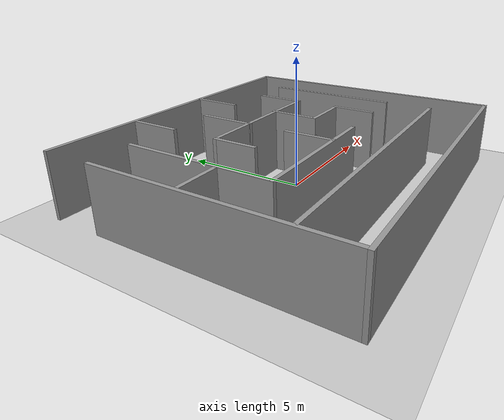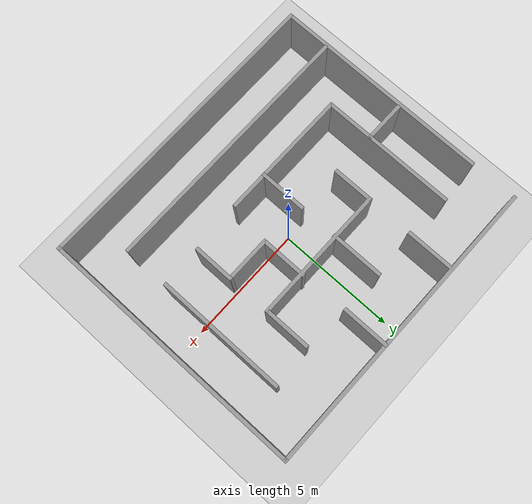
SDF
<sdf version='1.10'>
  <world name='maze'>
    <scene>
      <ambient>1 1 1 1</ambient>
      <background>0.800000012 0.800000012 0.800000012 1</background>
      <shadows>false</shadows>
    </scene>

    <gravity>0 0 -9.8000000000000007</gravity>
    <magnetic_field>5.5644999999999998e-06 2.2875799999999999e-05 -4.2388400000000002e-05</magnetic_field>
    <atmosphere type='adiabatic'/>
    <physics name='1ms' type='ignored'>
      <max_step_size>0.002</max_step_size>
      <real_time_factor>1</real_time_factor>
      <real_time_update_rate>500</real_time_update_rate>
    </physics>
    <plugin name='gz::sim::systems::Physics' filename='gz-sim-physics-system'/>
    <plugin name='gz::sim::systems::Sensors' filename='gz-sim-sensors-system'>
      <render_engine>ogre2</render_engine>
    </plugin>
    <plugin name='gz::sim::systems::SceneBroadcaster' filename='gz-sim-scene-broadcaster-system'/>
    <plugin name='gz::sim::systems::UserCommands' filename='gz-sim-user-commands-system'/>
    <model name='ground_plane'>
      <static>true</static>
      <link name='link'>
        <collision name='collision'>
          <geometry>
            <plane>
              <normal>0 0 1</normal>
              <size>100 100</size>
            </plane>
          </geometry>
          <surface>
            <friction>
              <ode>
                  <mu>1.0</mu>
                  <mu2>2.0</mu2>
              </ode>
            </friction>
            <bounce/>
            <contact/>
          </surface>
        </collision>
        <visual name='visual'>
          <geometry>
            <plane>
              <normal>0 0 1</normal>
              <size>100 100</size>
            </plane>
          </geometry>
          <material>
            <ambient>0.800000012 0.800000012 0.800000012 1</ambient>
            <diffuse>0.800000012 0.800000012 0.800000012 1</diffuse>
            <specular>0.800000012 0.800000012 0.800000012 1</specular>
          </material>
        </visual>
        <pose>0 0 0 0 0 0</pose>
        <inertial>
          <pose>0 0 0 0 0 0</pose>
          <mass>1</mass>
          <inertia>
            <ixx>1</ixx>
            <ixy>0</ixy>
            <ixz>0</ixz>
            <iyy>1</iyy>
            <iyz>0</iyz>
            <izz>1</izz>
          </inertia>
        </inertial>
        <enable_wind>false</enable_wind>
      </link>
      <pose>0 0 0 0 0 0</pose>
      <self_collide>false</self_collide>
    </model>

    <include>
        <uri>model://maze</uri>
        <pose>0 0 0 0 0 0</pose>
    </include>

    <light name='sun' type='directional'>
      <pose>0 0 0 0 0 0</pose>
      <cast_shadows>false</cast_shadows>
      <intensity>1</intensity>
      <direction>-0.5 0.10000000000000001 -0.90000000000000002</direction>
      <diffuse>0.800000012 0.800000012 0.800000012 1</diffuse>
      <specular>0.200000003 0.200000003 0.200000003 1</specular>
      <attenuation>
        <range>1000</range>
        <linear>0.0099999997764825821</linear>
        <constant>0.89999997615814209</constant>
        <quadratic>0.0010000000474974513</quadratic>
      </attenuation>
      <spot>
        <inner_angle>0</inner_angle>
        <outer_angle>0</outer_angle>
        <falloff>0</falloff>
      </spot>
    </light>
  </world>
</sdf>

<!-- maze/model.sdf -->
<sdf version='1.7'>
  <model name='maze'>
    <pose>0.736927 -0.393909 0 0 -0 0</pose>
    <link name='Wall_1'>
      <collision name='Wall_1_Collision'>
        <geometry>
          <box>
            <size>12.75 0.15 2.5</size>
          </box>
        </geometry>
        <pose>0 0 1.25 0 -0 0</pose>
      </collision>
      <visual name='Wall_1_Visual'>
        <pose>0 0 1.25 0 -0 0</pose>
        <geometry>
          <box>
            <size>12.75 0.15 2.5</size>
          </box>
        </geometry>
        <material>
          <script>
            <uri>file://media/materials/scripts/gazebo.material</uri>
            <name>Gazebo/Grey</name>
          </script>
          <ambient>1 1 1 1</ambient>
        </material>
        <meta>
          <layer>0</layer>
        </meta>
      </visual>
      <pose>0 5.55 0 0 -0 0</pose>
    </link>
    <link name='Wall_10'>
      <collision name='Wall_10_Collision'>
        <geometry>
          <box>
            <size>5.75 0.15 2.5</size>
          </box>
        </geometry>
        <pose>0 0 1.25 0 -0 0</pose>
      </collision>
      <visual name='Wall_10_Visual'>
        <pose>0 0 1.25 0 -0 0</pose>
        <geometry>
          <box>
            <size>5.75 0.15 2.5</size>
          </box>
        </geometry>
        <material>
          <script>
            <uri>file://media/materials/scripts/gazebo.material</uri>
            <name>Gazebo/Grey</name>
          </script>
          <ambient>1 1 1 1</ambient>
        </material>
        <meta>
          <layer>0</layer>
        </meta>
      </visual>
      <pose>-4.54439 0.887986 0 0 -0 -1.5708</pose>
    </link>
    <link name='Wall_11'>
      <collision name='Wall_11_Collision'>
        <geometry>
          <box>
            <size>5.5 0.15 2.5</size>
          </box>
        </geometry>
        <pose>0 0 1.25 0 -0 0</pose>
      </collision>
      <visual name='Wall_11_Visual'>
        <pose>0 0 1.25 0 -0 0</pose>
        <geometry>
          <box>
            <size>5.5 0.15 2.5</size>
          </box>
        </geometry>
        <material>
          <script>
            <uri>file://media/materials/scripts/gazebo.material</uri>
            <name>Gazebo/Grey</name>
          </script>
          <ambient>1 1 1 1</ambient>
        </material>
        <meta>
          <layer>0</layer>
        </meta>
      </visual>
      <pose>-1.86939 -1.91201 0 0 -0 0</pose>
    </link>
    <link name='Wall_13'>
      <collision name='Wall_13_Collision'>
        <geometry>
          <box>
            <size>2 0.15 2.5</size>
          </box>
        </geometry>
        <pose>0 0 1.25 0 -0 0</pose>
      </collision>
      <visual name='Wall_13_Visual'>
        <pose>0 0 1.25 0 -0 0</pose>
        <geometry>
          <box>
            <size>2 0.15 2.5</size>
          </box>
        </geometry>
        <material>
          <script>
            <uri>file://media/materials/scripts/gazebo.material</uri>
            <name>Gazebo/Grey</name>
          </script>
          <ambient>1 1 1 1</ambient>
        </material>
        <meta>
          <layer>0</layer>
        </meta>
      </visual>
      <pose>-0.767159 -0.973055 0 0 -0 1.5708</pose>
    </link>
    <link name='Wall_15'>
      <collision name='Wall_15_Collision'>
        <geometry>
          <box>
            <size>1.75 0.15 2.5</size>
          </box>
        </geometry>
        <pose>0 0 1.25 0 -0 0</pose>
      </collision>
      <visual name='Wall_15_Visual'>
        <pose>0 0 1.25 0 -0 0</pose>
        <geometry>
          <box>
            <size>1.75 0.15 2.5</size>
          </box>
        </geometry>
        <material>
          <script>
            <uri>file://media/materials/scripts/gazebo.material</uri>
            <name>Gazebo/Grey</name>
          </script>
          <ambient>1 1 1 1</ambient>
        </material>
        <meta>
          <layer>0</layer>
        </meta>
      </visual>
      <pose>-2.68237 0.817159 0 0 -0 1.5708</pose>
    </link>
    <link name='Wall_16'>
      <collision name='Wall_16_Collision'>
        <geometry>
          <box>
            <size>5.75 0.15 2.5</size>
          </box>
        </geometry>
        <pose>0 0 1.25 0 -0 0</pose>
      </collision>
      <visual name='Wall_16_Visual'>
        <pose>0 0 1.25 0 -0 0</pose>
        <geometry>
          <box>
            <size>5.75 0.15 2.5</size>
          </box>
        </geometry>
        <material>
          <script>
            <uri>file://media/materials/scripts/gazebo.material</uri>
            <name>Gazebo/Grey</name>
          </script>
          <ambient>1 1 1 1</ambient>
        </material>
        <meta>
          <layer>0</layer>
        </meta>
      </visual>
      <pose>0.117627 1.61716 0 0 -0 0</pose>
    </link>
    <link name='Wall_17'>
      <collision name='Wall_17_Collision'>
        <geometry>
          <box>
            <size>2 0.15 2.5</size>
          </box>
        </geometry>
        <pose>0 0 1.25 0 -0 0</pose>
      </collision>
      <visual name='Wall_17_Visual'>
        <pose>0 0 1.25 0 -0 0</pose>
        <geometry>
          <box>
            <size>2 0.15 2.5</size>
          </box>
        </geometry>
        <material>
          <script>
            <uri>file://media/materials/scripts/gazebo.material</uri>
            <name>Gazebo/Grey</name>
          </script>
          <ambient>1 1 1 1</ambient>
        </material>
        <meta>
          <layer>0</layer>
        </meta>
      </visual>
      <pose>2.91763 2.54216 0 0 -0 1.5708</pose>
    </link>
    <link name='Wall_19'>
      <collision name='Wall_19_Collision'>
        <geometry>
          <box>
            <size>2.25 0.15 2.5</size>
          </box>
        </geometry>
        <pose>0 0 1.25 0 -0 0</pose>
      </collision>
      <visual name='Wall_19_Visual'>
        <pose>0 0 1.25 0 -0 0</pose>
        <geometry>
          <box>
            <size>2.25 0.15 2.5</size>
          </box>
        </geometry>
        <material>
          <script>
            <uri>file://media/materials/scripts/gazebo.material</uri>
            <name>Gazebo/Grey</name>
          </script>
          <ambient>1 1 1 1</ambient>
        </material>
        <meta>
          <layer>0</layer>
        </meta>
      </visual>
      <pose>-0.767159 2.63657 0 0 -0 1.5708</pose>
    </link>
    <link name='Wall_2'>
      <collision name='Wall_2_Collision'>
        <geometry>
          <box>
            <size>11.25 0.15 2.5</size>
          </box>
        </geometry>
        <pose>0 0 1.25 0 -0 0</pose>
      </collision>
      <visual name='Wall_2_Visual'>
        <pose>0 0 1.25 0 -0 0</pose>
        <geometry>
          <box>
            <size>11.25 0.15 2.5</size>
          </box>
        </geometry>
        <material>
          <script>
            <uri>file://media/materials/scripts/gazebo.material</uri>
            <name>Gazebo/Grey</name>
          </script>
          <ambient>1 1 1 1</ambient>
        </material>
        <meta>
          <layer>0</layer>
        </meta>
      </visual>
      <pose>6.3 0 0 0 -0 -1.5708</pose>
    </link>
    <link name='Wall_21'>
      <collision name='Wall_21_Collision'>
        <geometry>
          <box>
            <size>2 0.15 2.5</size>
          </box>
        </geometry>
        <pose>0 0 1.25 0 -0 0</pose>
      </collision>
      <visual name='Wall_21_Visual'>
        <pose>0 0 1.25 0 -0 0</pose>
        <geometry>
          <box>
            <size>2 0.15 2.5</size>
          </box>
        </geometry>
        <material>
          <script>
            <uri>file://media/materials/scripts/gazebo.material</uri>
            <name>Gazebo/Grey</name>
          </script>
          <ambient>1 1 1 1</ambient>
        </material>
        <meta>
          <layer>0</layer>
        </meta>
      </visual>
      <pose>1.09485 0.741371 0 0 -0 -1.5708</pose>
    </link>
    <link name='Wall_22'>
      <collision name='Wall_22_Collision'>
        <geometry>
          <box>
            <size>2 0.15 2.5</size>
          </box>
        </geometry>
        <pose>0 0 1.25 0 -0 0</pose>
      </collision>
      <visual name='Wall_22_Visual'>
        <pose>0 0 1.25 0 -0 0</pose>
        <geometry>
          <box>
            <size>2 0.15 2.5</size>
          </box>
        </geometry>
        <material>
          <script>
            <uri>file://media/materials/scripts/gazebo.material</uri>
            <name>Gazebo/Grey</name>
          </script>
          <ambient>1 1 1 1</ambient>
        </material>
        <meta>
          <layer>0</layer>
        </meta>
      </visual>
      <pose>2.01986 -0.183629 0 0 -0 0</pose>
    </link>
    <link name='Wall_23'>
      <collision name='Wall_23_Collision'>
        <geometry>
          <box>
            <size>1.75 0.15 2.5</size>
          </box>
        </geometry>
        <pose>0 0 1.25 0 -0 0</pose>
      </collision>
      <visual name='Wall_23_Visual'>
        <pose>0 0 1.25 0 -0 0</pose>
        <geometry>
          <box>
            <size>1.75 0.15 2.5</size>
          </box>
        </geometry>
        <material>
          <script>
            <uri>file://media/materials/scripts/gazebo.material</uri>
            <name>Gazebo/Grey</name>
          </script>
          <ambient>1 1 1 1</ambient>
        </material>
        <meta>
          <layer>0</layer>
        </meta>
      </visual>
      <pose>2.94486 -0.983629 0 0 -0 -1.5708</pose>
    </link>
    <link name='Wall_25'>
      <collision name='Wall_25_Collision'>
        <geometry>
          <box>
            <size>11 0.15 2.5</size>
          </box>
        </geometry>
        <pose>0 0 1.25 0 -0 0</pose>
      </collision>
      <visual name='Wall_25_Visual'>
        <pose>0 0 1.25 0 -0 0</pose>
        <geometry>
          <box>
            <size>11 0.15 2.5</size>
          </box>
        </geometry>
        <material>
          <script>
            <uri>file://media/materials/scripts/gazebo.material</uri>
            <name>Gazebo/Grey</name>
          </script>
          <ambient>1 1 1 1</ambient>
        </material>
        <meta>
          <layer>0</layer>
        </meta>
      </visual>
      <pose>-0.768599 -3.65367 0 0 -0 0</pose>
    </link>
    <link name='Wall_27'>
      <collision name='Wall_27_Collision'>
        <geometry>
          <box>
            <size>1.75 0.15 2.5</size>
          </box>
        </geometry>
        <pose>0 0 1.25 0 -0 0</pose>
      </collision>
      <visual name='Wall_27_Visual'>
        <pose>0 0 1.25 0 -0 0</pose>
        <geometry>
          <box>
            <size>1.75 0.15 2.5</size>
          </box>
        </geometry>
        <material>
          <script>
            <uri>file://media/materials/scripts/gazebo.material</uri>
            <name>Gazebo/Grey</name>
          </script>
          <ambient>1 1 1 1</ambient>
        </material>
        <meta>
          <layer>0</layer>
        </meta>
      </visual>
      <pose>-5.367 0.043759 0 0 -0 0</pose>
    </link>
    <link name='Wall_29'>
      <collision name='Wall_29_Collision'>
        <geometry>
          <box>
            <size>5.5 0.15 2.5</size>
          </box>
        </geometry>
        <pose>0 0 1.25 0 -0 0</pose>
      </collision>
      <visual name='Wall_29_Visual'>
        <pose>0 0 1.25 0 -0 0</pose>
        <geometry>
          <box>
            <size>5.5 0.15 2.5</size>
          </box>
        </geometry>
        <material>
          <script>
            <uri>file://media/materials/scripts/gazebo.material</uri>
            <name>Gazebo/Grey</name>
          </script>
          <ambient>1 1 1 1</ambient>
        </material>
        <meta>
          <layer>0</layer>
        </meta>
      </visual>
      <pose>4.65928 0.936546 0 0 -0 1.5708</pose>
    </link>
    <link name='Wall_3'>
      <collision name='Wall_3_Collision'>
        <geometry>
          <box>
            <size>12.75 0.15 2.5</size>
          </box>
        </geometry>
        <pose>0 0 1.25 0 -0 0</pose>
      </collision>
      <visual name='Wall_3_Visual'>
        <pose>0 0 1.25 0 -0 0</pose>
        <geometry>
          <box>
            <size>12.75 0.15 2.5</size>
          </box>
        </geometry>
        <material>
          <script>
            <uri>file://media/materials/scripts/gazebo.material</uri>
            <name>Gazebo/Grey</name>
          </script>
          <ambient>1 1 1 1</ambient>
        </material>
        <meta>
          <layer>0</layer>
        </meta>
      </visual>
      <pose>0 -5.55 0 0 -0 3.14159</pose>
    </link>
    <link name='Wall_4'>
      <collision name='Wall_4_Collision'>
        <geometry>
          <box>
            <size>9.25 0.15 2.5</size>
          </box>
        </geometry>
        <pose>0 0 1.25 0 -0 0</pose>
      </collision>
      <visual name='Wall_4_Visual'>
        <pose>0 0 1.25 0 -0 0</pose>
        <geometry>
          <box>
            <size>9.25 0.15 2.5</size>
          </box>
        </geometry>
        <material>
          <script>
            <uri>file://media/materials/scripts/gazebo.material</uri>
            <name>Gazebo/Grey</name>
          </script>
          <ambient>1 1 1 1</ambient>
        </material>
        <meta>
          <layer>0</layer>
        </meta>
      </visual>
      <pose>-6.3 -1 0 0 -0 1.5708</pose>
    </link>
    <link name='Wall_6'>
      <collision name='Wall_6_Collision'>
        <geometry>
          <box>
            <size>2 0.15 2.5</size>
          </box>
        </geometry>
        <pose>0 0 1.25 0 -0 0</pose>
      </collision>
      <visual name='Wall_6_Visual'>
        <pose>0 0 1.25 0 -0 0</pose>
        <geometry>
          <box>
            <size>2 0.15 2.5</size>
          </box>
        </geometry>
        <material>
          <script>
            <uri>file://media/materials/scripts/gazebo.material</uri>
            <name>Gazebo/Grey</name>
          </script>
          <ambient>1 1 1 1</ambient>
        </material>
        <meta>
          <layer>0</layer>
        </meta>
      </visual>
      <pose>-2.68237 4.492 0 0 -0 -1.5708</pose>
    </link>
    <link name='Wall_8'>
      <collision name='Wall_8_Collision'>
        <geometry>
          <box>
            <size>2 0.15 2.5</size>
          </box>
        </geometry>
        <pose>0 0 1.25 0 -0 0</pose>
      </collision>
      <visual name='Wall_8_Visual'>
        <pose>0 0 1.25 0 -0 0</pose>
        <geometry>
          <box>
            <size>2 0.15 2.5</size>
          </box>
        </geometry>
        <material>
          <script>
            <uri>file://media/materials/scripts/gazebo.material</uri>
            <name>Gazebo/Grey</name>
          </script>
          <ambient>1 1 1 1</ambient>
        </material>
        <meta>
          <layer>0</layer>
        </meta>
      </visual>
      <pose>1.01506 4.5984 0 0 -0 -1.5708</pose>
    </link>
    <static>1</static>
  </model>
</sdf>
